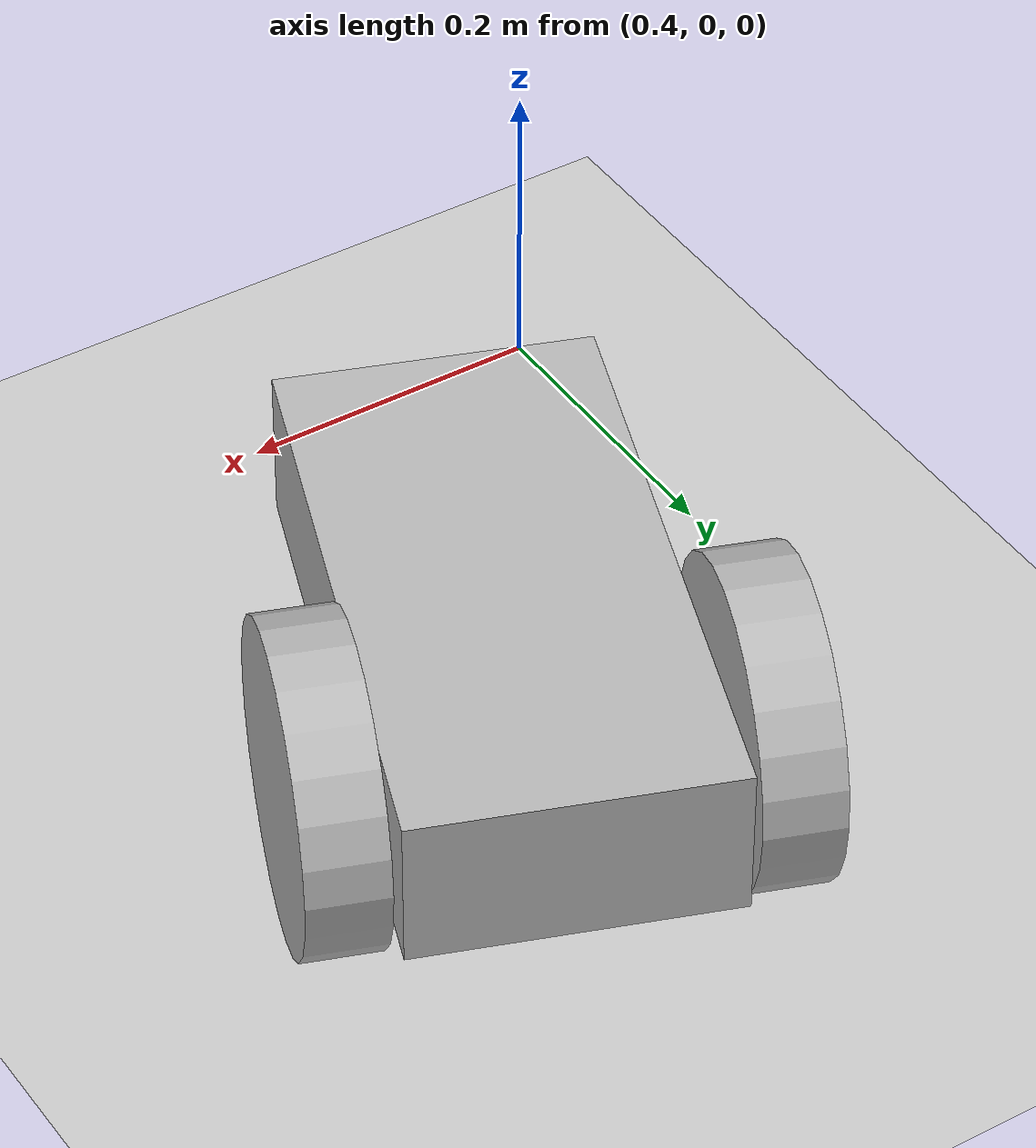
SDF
<sdf version="1.6">
 <world name="default">
  <light name="sun" type="directional">
   <pose>0 0 10 0 -0 0</pose>
   <diffuse>0.8 0.8 0.8 1</diffuse>
   <specular>0.2 0.2 0.2 1</specular>
   <attenuation>
    <range>1000</range>
    <constant>0.9</constant>
    <linear>0.01</linear>
    <quadratic>0.001</quadratic>
   </attenuation>
   <direction>-0.5 0.1 -0.9</direction>
  </light>
  <model name="ground_plane">
   <static>1</static>
   <link name="link">
    <collision name="collision">
     <geometry><plane><normal>0 0 1</normal><size>100 100</size></plane></geometry>
     <surface>
      <contact><collide_bitmask>65535</collide_bitmask></contact>
      <friction><ode><mu>100</mu><mu2>50</mu2></ode></friction>
     </surface>
    </collision>
    <visual name="visual">
     <cast_shadows>0</cast_shadows>
     <geometry><plane><normal>0 0 1</normal><size>100 100</size></plane></geometry>
     <material>
      <script><uri>file://media/materials/scripts/gazebo.material</uri><name>Gazebo/Grey</name></script>
     </material>
    </visual>
   </link>
  </model>
  <gravity>0 0 -9.8</gravity>
  <magnetic_field>6e-06 2.3e-05 -4.2e-05</magnetic_field>
  <atmosphere type="adiabatic"/>
  <physics name="default_physics" default="0" type="ode">
   <max_step_size>0.001</max_step_size>
   <real_time_factor>1</real_time_factor>
   <real_time_update_rate>1000</real_time_update_rate>
  </physics>
  <scene><ambient>0.4 0.4 0.4 1</ambient><background>0.7 0.7 0.7 1</background><shadows>1</shadows></scene>
  <spherical_coordinates>
   <surface_model>EARTH_WGS84</surface_model>
   <latitude_deg>0</latitude_deg>
   <longitude_deg>0</longitude_deg>
   <elevation>0</elevation>
   <heading_deg>0</heading_deg>
  </spherical_coordinates>
  <plugin name="GazeboRosState" filename="libgazebo_ros_state.so"/>
  <model name="my_robot">
   <static>0</static>
   <link name="chassis">
    <pose>0 0 0.1 0 -0 0</pose>
    <collision name="collision"><geometry><box><size>0.4 0.2 0.1</size></box></geometry></collision>
    <visual name="visual"><geometry><box><size>0.4 0.2 0.1</size></box></geometry></visual>
    <collision name="caster_collision">
     <pose>-0.15 0 -0.05 0 -0 0</pose>
     <geometry><sphere><radius>0.05</radius></sphere></geometry>
     <surface><friction><ode><mu>0</mu><mu2>0</mu2><slip1>1</slip1><slip2>1</slip2></ode></friction></surface>
    </collision>
    <visual name="caster_visual">
     <pose>-0.15 0 -0.05 0 -0 0</pose>
     <geometry><sphere><radius>0.05</radius></sphere></geometry>
    </visual>
    <sensor name="sensor_ray" type="ray">
     <pose>0.2 0 0 0 -0 0</pose>
     <ray>
      <scan>
       <horizontal>
        <samples>200</samples>
        <resolution>1</resolution>
        <min_angle>-1</min_angle>
        <max_angle>1</max_angle>
       </horizontal>
       <vertical><samples>1</samples><min_angle>0</min_angle><max_angle>0</max_angle></vertical>
      </scan>
      <range><min>0.02</min><max>10</max></range>
     </ray>
     <always_on>1</always_on>
     <visualize>1</visualize>
     <update_rate>100</update_rate>
     <plugin name="laser" filename="libgazebo_ros_ray_sensor.so">
      <ros><namespace>/myrobot</namespace><remapping>~/out:=laser_scan</remapping></ros>
      <output_type>sensor_msgs/LaserScan</output_type>
     </plugin>
    </sensor>
    <inertial>
     <inertia><ixx>1</ixx><ixy>0</ixy><ixz>0</ixz><iyy>1</iyy><iyz>0</iyz><izz>1</izz></inertia>
     <mass>1</mass>
    </inertial>
   </link>
   <link name="left_wheel">
    <pose>0.1 0.13 0.1 -0 1.5707 1.5707</pose>
    <collision name="collision">
     <geometry><cylinder><radius>0.1</radius><length>0.05</length></cylinder></geometry>
    </collision>
    <visual name="visual">
     <geometry><cylinder><radius>0.1</radius><length>0.05</length></cylinder></geometry>
    </visual>
    <inertial>
     <inertia><ixx>1</ixx><ixy>0</ixy><ixz>0</ixz><iyy>1</iyy><iyz>0</iyz><izz>1</izz></inertia>
     <mass>1</mass>
    </inertial>
   </link>
   <link name="right_wheel">
    <pose>0.1 -0.13 0.1 -0 1.5707 1.5707</pose>
    <collision name="collision">
     <geometry><cylinder><radius>0.1</radius><length>0.05</length></cylinder></geometry>
    </collision>
    <visual name="visual">
     <geometry><cylinder><radius>0.1</radius><length>0.05</length></cylinder></geometry>
    </visual>
    <inertial>
     <inertia><ixx>1</ixx><ixy>0</ixy><ixz>0</ixz><iyy>1</iyy><iyz>0</iyz><izz>1</izz></inertia>
     <mass>1</mass>
    </inertial>
   </link>
   <joint name="left_wheel_hinge" type="revolute">
    <pose>0 0 -0.03 0 -0 0</pose>
    <child>left_wheel</child>
    <parent>chassis</parent>
    <axis>
     <xyz>0 1 0</xyz>
     <use_parent_model_frame>1</use_parent_model_frame>
     <limit><lower>-1e+16</lower><upper>1e+16</upper></limit>
     <dynamics><spring_reference>0</spring_reference><spring_stiffness>0</spring_stiffness></dynamics>
    </axis>
   </joint>
   <joint name="right_wheel_hinge" type="revolute">
    <pose>0 0 0.03 0 -0 0</pose>
    <child>right_wheel</child>
    <parent>chassis</parent>
    <axis>
     <xyz>0 1 0</xyz>
     <use_parent_model_frame>1</use_parent_model_frame>
     <limit><lower>-1e+16</lower><upper>1e+16</upper></limit>
     <dynamics><spring_reference>0</spring_reference><spring_stiffness>0</spring_stiffness></dynamics>
    </axis>
   </joint>
   <plugin name="diff_drive" filename="libgazebo_ros_diff_drive.so">
    <ros><namespace>/myrobot</namespace></ros>
    <left_joint>left_wheel_hinge</left_joint>
    <right_joint>right_wheel_hinge</right_joint>
    <wheel_separation>1.25</wheel_separation>
    <wheel_diameter>0.3</wheel_diameter>
    <max_wheel_torque>20</max_wheel_torque>
    <max_wheel_acceleration>1.0</max_wheel_acceleration>
    <publish_odom>1</publish_odom>
    <publish_odom_tf>1</publish_odom_tf>
    <odometry_frame>odom_demo</odometry_frame>
    <robot_base_frame>chassis</robot_base_frame>
   </plugin>
   <pose>0.619563 0.324896 3e-06 2.4e-05 2.9e-05 1.21746</pose>
  </model>
  <audio><device>default</device></audio>
 </world>
</sdf>
